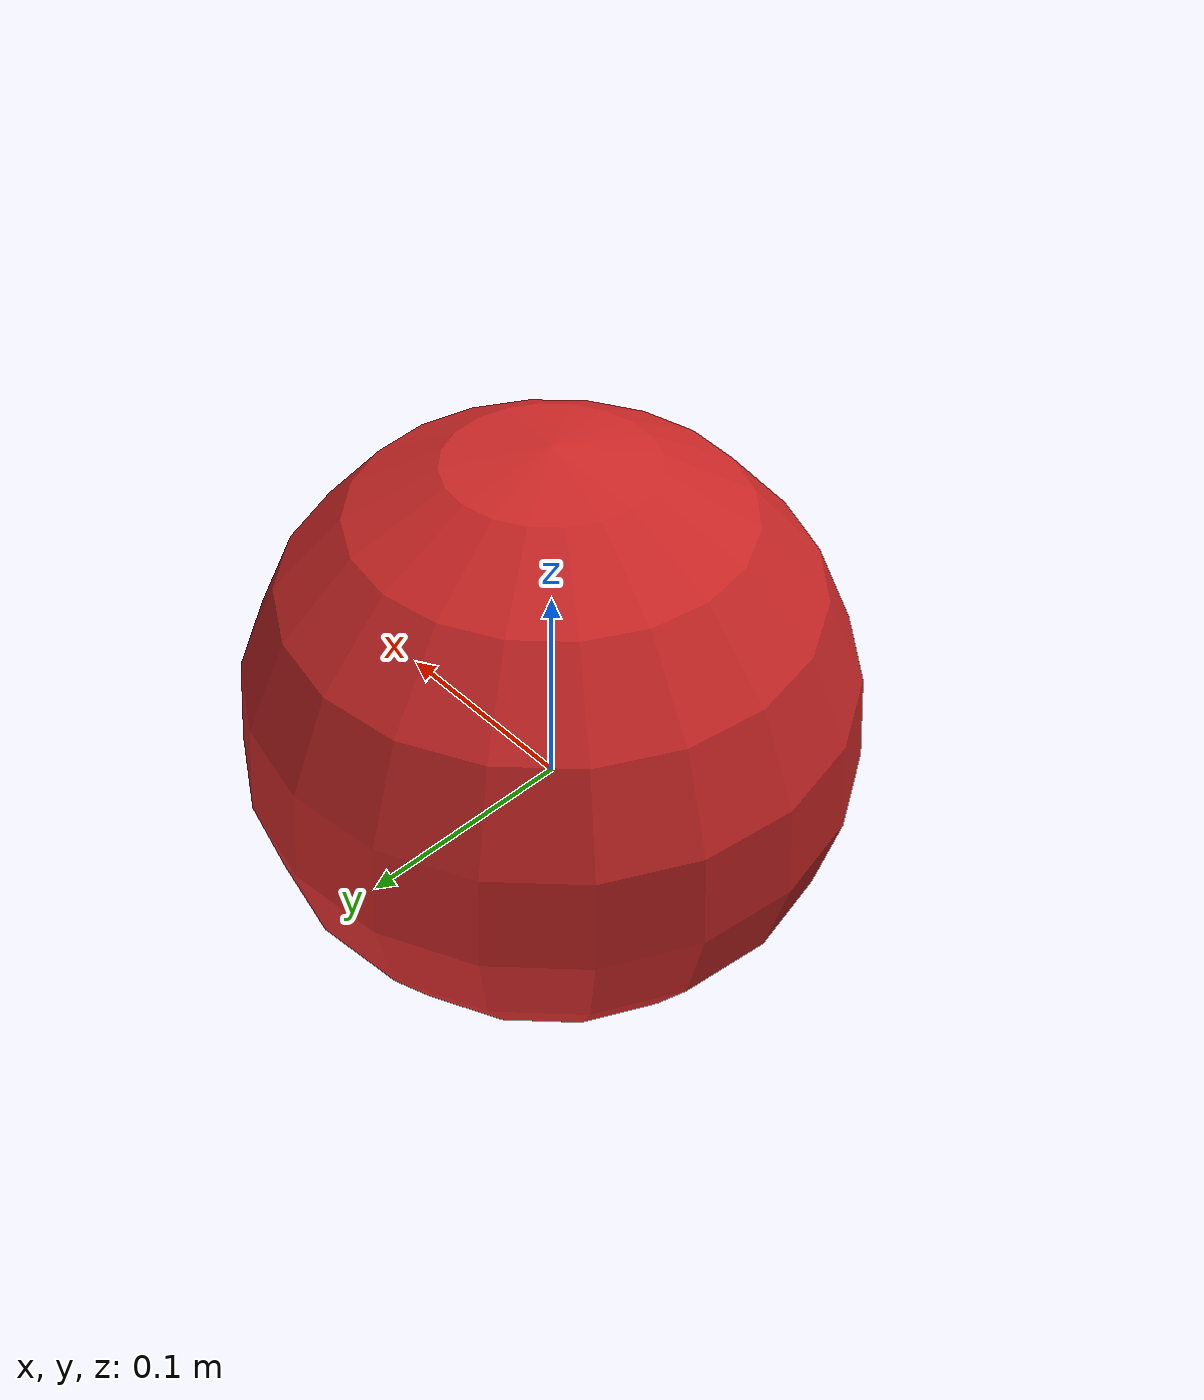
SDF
<?xml version='1.0'?>
<sdf version='1.6'>
  <model name='cricket_ball1'>
    <link name='cricket_ball::link'>
      <pose frame=''>0 0 0.0375 0 -0 0</pose>
      <inertial>
        <mass>6.51638</mass>
        <inertia>
          <ixx>0.0459801</ixx>
          <ixy>0</ixy>
          <ixz>0</ixz>
          <iyy>0.0459801</iyy>
          <iyz>0</iyz>
          <izz>0.0459801</izz>
        </inertia>
        <pose frame=''>0 0 0 0 -0 0</pose>
      </inertial>
      <velocity_decay>
        <linear>0</linear>
        <angular>0.005</angular>
      </velocity_decay>
      <self_collide>0</self_collide>
      <enable_wind>0</enable_wind>
      <kinematic>0</kinematic>
      <visual name='visual'>
        <geometry>
          <sphere>
            <radius>0.132816</radius>
          </sphere>
        </geometry>
        <material>
          <script>
            <uri>file://media/materials/scripts/gazebo.material</uri>
            <name>Gazebo/Red</name>
          </script>
          <shader type='pixel'/>
        </material>
        <pose frame=''>0 0 0 0 -0 0</pose>
        <transparency>0</transparency>
        <cast_shadows>1</cast_shadows>
      </visual>
      <collision name='collision'>
        <laser_retro>0</laser_retro>
        <max_contacts>10</max_contacts>
        <pose frame=''>0 0 0 0 -0 0</pose>
        <geometry>
          <sphere>
            <radius>0.132816</radius>
          </sphere>
        </geometry>
        <surface>
          <friction>
            <ode>
              <mu>1</mu>
              <mu2>1</mu2>
              <fdir1>0 0 0</fdir1>
              <slip1>0</slip1>
              <slip2>0</slip2>
            </ode>
            <torsional>
              <coefficient>1</coefficient>
              <patch_radius>0</patch_radius>
              <surface_radius>0.01</surface_radius>
              <use_patch_radius>0</use_patch_radius>
              <ode>
                <slip>0</slip>
              </ode>
            </torsional>
          </friction>
          <bounce>
            <restitution_coefficient>0</restitution_coefficient>
            <threshold>1e+06</threshold>
          </bounce>
          <contact>
            <collide_without_contact>0</collide_without_contact>
            <collide_without_contact_bitmask>1</collide_without_contact_bitmask>
            <collide_bitmask>1</collide_bitmask>
            <ode>
              <soft_cfm>0</soft_cfm>
              <soft_erp>0.2</soft_erp>
              <kp>100000</kp>
              <kd>100</kd>
              <max_vel>100</max_vel>
              <min_depth>0.001</min_depth>
            </ode>
            <bullet>
              <split_impulse>1</split_impulse>
              <split_impulse_penetration_threshold>-0.01</split_impulse_penetration_threshold>
              <soft_cfm>0</soft_cfm>
              <soft_erp>0.2</soft_erp>
              <kp>100000</kp>
              <kd>100</kd>
            </bullet>
          </contact>
        </surface>
      </collision>
    </link>
    <static>1</static>
    <allow_auto_disable>1</allow_auto_disable>
  </model>
</sdf>
